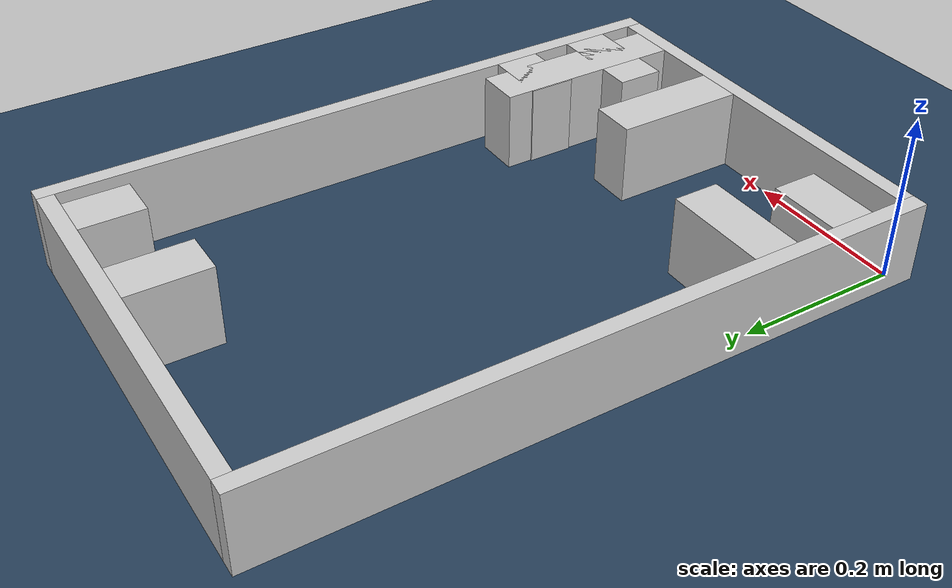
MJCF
<?xml version="1.0" ?>
<mujoco model="generated_real_template">
  <compiler angle="degree"/>
  <option timestep="0.002" integrator="implicitfast" iterations="100" cone="elliptic"/>
  <default>
    <geom density="1"/>
  </default>
  <asset>
    <texture builtin="gradient" height="3072" rgb1="0.3 0.5 0.7" rgb2="0 0 0" type="skybox" width="512"/>
    <texture builtin="checker" height="300" mark="edge" markrgb="0.8 0.8 0.8" name="groundplane" rgb1="0.2 0.3 0.4" rgb2="0.1 0.2 0.3" type="2d" width="300"/>
    <material name="groundplane" reflectance="0.2" texrepeat="5 5" texture="groundplane" texuniform="true"/>
  </asset>
  <worldbody>
    <light dir="0 0 -1" directional="true" pos="0 0 1.5"/>
    <geom name="floor" type="plane" condim="4" friction="0.5 0.005 0.001" material="groundplane" size="0 0 0.05"/>
    <body name="walls">
      <geom name="wall_boundary_left" type="box" condim="4" friction="1.0 0.005 0.0001" rgba="0.8 0.8 0.8 1" pos="-0.010000 0.387500 0.050000" euler="0 0 0.000000" size="0.010000 0.407500 0.050000"/>
      <geom name="wall_boundary_right" type="box" condim="4" friction="1.0 0.005 0.0001" rgba="0.8 0.8 0.8 1" pos="0.500000 0.387500 0.050000" euler="0 0 0.000000" size="0.010000 0.407500 0.050000"/>
      <geom name="wall_boundary_bottom" type="box" condim="4" friction="1.0 0.005 0.0001" rgba="0.8 0.8 0.8 1" pos="0.245000 -0.010000 0.050000" euler="0 0 0.000000" size="0.245000 0.010000 0.050000"/>
      <geom name="wall_boundary_top" type="box" condim="4" friction="1.0 0.005 0.0001" rgba="0.8 0.8 0.8 1" pos="0.245000 0.785000 0.050000" euler="0 0 0.000000" size="0.245000 0.010000 0.050000"/>
      <geom name="wall_inner_1_1" type="box" condim="4" friction="1.0 0.005 0.0001" rgba="0.8 0.8 0.8 1" pos="0.303146 0.080916 0.050000" euler="0 0 90.000000" size="0.080916 0.028500 0.050000"/>
      <geom name="wall_inner_1_2" type="box" condim="4" friction="1.0 0.005 0.0001" rgba="0.8 0.8 0.8 1" pos="0.303146 0.725529 0.050000" euler="0 0 90.000000" size="0.049471 0.028500 0.050000"/>
      <geom name="wall_inner_2_1" type="box" condim="4" friction="1.0 0.005 0.0001" rgba="0.8 0.8 0.8 1" pos="0.044798 0.069647 0.050000" euler="0 0 0.000000" size="0.044798 0.028500 0.050000"/>
      <geom name="wall_inner_2_2" type="box" condim="4" friction="1.0 0.005 0.0001" rgba="0.8 0.8 0.8 1" pos="0.429656 0.069647 0.050000" euler="0 0 0.000000" size="0.060344 0.028500 0.050000"/>
      <geom name="wall_inner_3_1" type="box" condim="4" friction="1.0 0.005 0.0001" rgba="0.8 0.8 0.8 1" pos="0.438964 0.118622 0.050000" euler="0 0 90.000000" size="0.118622 0.028500 0.050000"/>
      <geom name="wall_inner_3_2" type="box" condim="4" friction="1.0 0.005 0.0001" rgba="0.8 0.8 0.8 1" pos="0.438964 0.736369 0.050000" euler="0 0 90.000000" size="0.038631 0.028500 0.050000"/>
      <geom name="wall_inner_4_1" type="box" condim="4" friction="1.0 0.005 0.0001" rgba="0.8 0.8 0.8 1" pos="0.065037 0.175850 0.050000" euler="0 0 0.000000" size="0.065037 0.028500 0.050000"/>
      <geom name="wall_inner_4_2" type="box" condim="4" friction="1.0 0.005 0.0001" rgba="0.8 0.8 0.8 1" pos="0.449390 0.175850 0.050000" euler="0 0 0.000000" size="0.040610 0.028500 0.050000"/>
    </body>
  </worldbody>
</mujoco>
